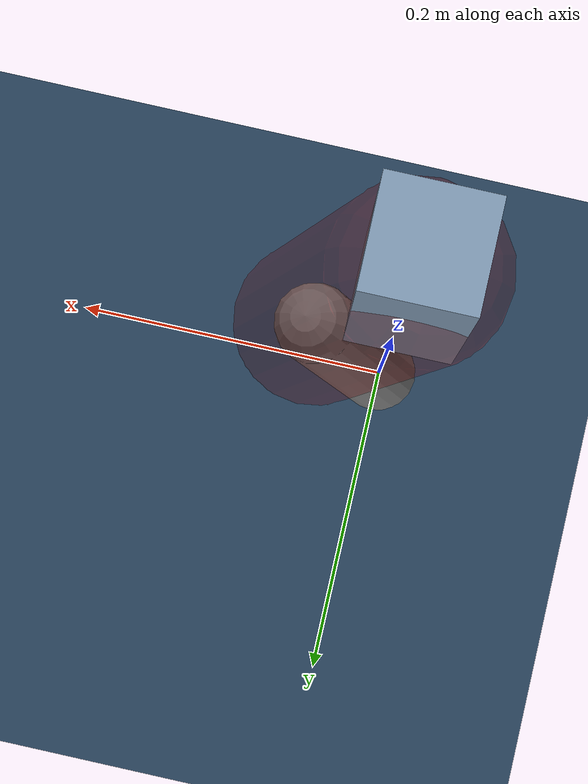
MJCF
<mujoco model="Hopper2D">
	<compiler inertiafromgeom="true" angle="radian" />
	<option timestep="0.001" integrator="implicit" cone="elliptic" solver="Newton" tolerance="1e-10" />

	<default>
		<geom contype="1" conaffinity="1" condim="3" friction="2 0.005 0.0001" solref="0.005 1" />
		<joint limited="true" damping="0.1" />
	</default>

	<asset>
		<texture name="skybox" type="skybox" builtin="gradient" rgb1=".4 .6 .8" rgb2="0 0 0" width="800" height="800" />
		<texture name="grid" type="2d" builtin="checker" rgb1=".1 .2 .3" rgb2=".2 .3 .4" width="300" height="300" mark="edge" markrgb=".2 .3 .4" />
		<material name="ground" texture="grid" texrepeat="1 1" texuniform="true" reflectance="0.1" />
		<material name="leg" rgba="0.5 0.6 0.7 1" />
	</asset>

	<worldbody>

		<geom name="floor" type="plane" size="5 5 0.25" material="ground" />

		<light directional="false" diffuse="0.8 0.8 0.8" specular="0.3 0.3 0.3" pos="0 0 2" dir="0 0 -1" />
		<light mode="targetbodycom" target="base" directional="false" diffuse="0.8 0.8 0.8" specular="0.3 0.3 0.3" pos="0 0 2" dir="0 0 -1" />

		<camera name="fixed" pos="0 -2 1" xyaxes="1 0 0 0 0 1" />
		<camera name="tracking" mode="trackcom" pos="0 -3 1" />

		<body name="root" pos="0 0 0.4773689896413189">
			<joint name="slide_x" type="slide" axis="1 0 0" range="-100 100" />
			<joint name="slide_z" type="slide" axis="0 0 1" range="0 10" />

			<body name="base" pos="0 0 0">
				<geom name="torso" type="box" size="0.03 0.03 0.1" mass="3.9450000000000003" material="leg" />

				<body name="link1" pos="0 0 0" euler="0 1.4083868178225505 0">
					<joint type="hinge" axis="0 -1 0" pos="0 0 0" name="hinge1" limited="true" range="-3.14 3.14" stiffness="0" damping="0.1" />
					<geom name="thigh" type="capsule" fromto="0 0 0 0.2962605365103215 0 0" size="0.05" rgba="0.5 0 0 0.3" mass="0.9786034485778682" />

					<body name="link2" pos="0.2962605365103215 0 0" euler="0 0.4157770880567818 0">
						<joint type="hinge" axis="0 -1 0" pos="0 0 0" name="hinge2" limited="true" range="-3.14 3.14" stiffness="0" damping="0.1" />
						<geom name="shank" type="capsule" fromto="0 0 0 0.1911084531309974 0 0" size="0.025" mass="0.39338676250479787" />

					</body>
				</body>
			</body>
		</body>
	</worldbody>

	<actuator>
		<motor name="torque1" joint="hinge1" ctrlrange="-228.04831968707057 228.04831968707057" ctrllimited="true" gear="1" />
		<motor name="torque2" joint="hinge2" ctrlrange="-103.18348313573081 103.18348313573081" ctrllimited="true" gear="1" />
	</actuator>
</mujoco>
